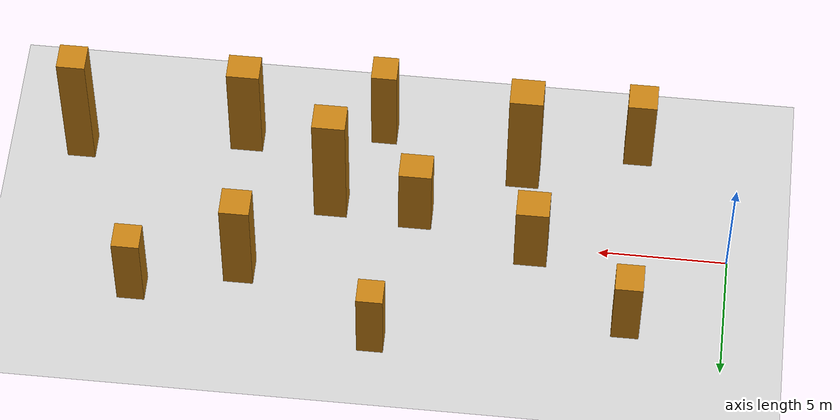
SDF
<sdf version="1.7">
 <world name="default">
  <light name="sun" type="directional">
   <pose>0 0 10 0 -0 0</pose>
   <diffuse>0.8 0.8 0.8 1</diffuse>
   <specular>0.2 0.2 0.2 1</specular>
   <attenuation>
    <range>1000</range>
    <constant>0.9</constant>
    <linear>0.01</linear>
    <quadratic>0.001</quadratic>
   </attenuation>
   <direction>-0.5 0.1 -0.9</direction>
   <spot><inner_angle>0</inner_angle><outer_angle>0</outer_angle><falloff>0</falloff></spot>
  </light>
  <model name="ground_plane">
   <static>1</static>
   <link name="link">
    <collision name="collision">
     <geometry><plane><normal>0 0 1</normal><size>100 100</size></plane></geometry>
     <surface>
      <contact><collide_bitmask>65535</collide_bitmask></contact>
      <friction><ode><mu>100</mu><mu2>50</mu2></ode></friction>
     </surface>
    </collision>
    <visual name="visual">
     <cast_shadows>0</cast_shadows>
     <geometry><plane><normal>0 0 1</normal><size>100 100</size></plane></geometry>
     <material>
      <script><uri>file://media/materials/scripts/gazebo.material</uri><name>Gazebo/Grey</name></script>
     </material>
    </visual>
   </link>
  </model>
  <gravity>0 0 -9.8</gravity>
  <magnetic_field>6e-06 2.3e-05 -4.2e-05</magnetic_field>
  <atmosphere type="adiabatic"/>
  <physics type="ode">
   <max_step_size>0.001</max_step_size>
   <real_time_factor>1</real_time_factor>
   <real_time_update_rate>1000</real_time_update_rate>
  </physics>
  <scene><ambient>0.4 0.4 0.4 1</ambient><background>0.7 0.7 0.7 1</background><shadows>1</shadows></scene>
  <spherical_coordinates>
   <surface_model>EARTH_WGS84</surface_model>
   <latitude_deg>0</latitude_deg>
   <longitude_deg>0</longitude_deg>
   <elevation>0</elevation>
   <heading_deg>0</heading_deg>
  </spherical_coordinates>
  <plugin name="gazebo_octomap" filename="libBuildOctomapPlugin.so"/>
  <model name="model0">
   <link name="link">
    <inertial>
     <mass>1</mass>
     <inertia>
      <ixx>0.166667</ixx>
      <ixy>0</ixy>
      <ixz>0</ixz>
      <iyy>0.166667</iyy>
      <iyz>0</iyz>
      <izz>0.166667</izz>
     </inertia>
    </inertial>
    <visual name="visual">
     <geometry><box><size>1.1537893512140711 1.1325194617878394 4.798290944481906</size></box></geometry>
     <material>
      <script><name>Gazebo/Grey</name><uri>file://media/materials/scripts/gazebo.material</uri></script>
      <shader type="pixel"><normal_map>__default__</normal_map></shader>
      <ambient>0.757 0.49 0.067 1</ambient>
      <diffuse>0.7 0.7 0.7 1</diffuse>
      <specular>0.01 0.01 0.01 1</specular>
      <emissive>0 0 0 1</emissive>
     </material>
    </visual>
    <collision name="collision">
     <geometry><box><size>1.1537893512140711 1.1325194617878394 4.798290944481906</size></box></geometry>
     <surface>
      <friction>
       <ode><mu>1</mu><mu2>1</mu2><fdir1>0 0 0</fdir1><slip1>0</slip1><slip2>0</slip2></ode>
       <torsional>
        <coefficient>1</coefficient>
        <patch_radius>0</patch_radius>
        <surface_radius>0</surface_radius>
        <use_patch_radius>1</use_patch_radius>
        <ode><slip>0</slip></ode>
       </torsional>
      </friction>
      <bounce><restitution_coefficient>0</restitution_coefficient><threshold>1e+06</threshold></bounce>
      <contact>
       <collide_without_contact>0</collide_without_contact>
       <collide_without_contact_bitmask>1</collide_without_contact_bitmask>
       <collide_bitmask>1</collide_bitmask>
       <ode>
        <soft_cfm>0</soft_cfm>
        <soft_erp>0.2</soft_erp>
        <kp>1e+13</kp>
        <kd>1</kd>
        <max_vel>0.01</max_vel>
        <min_depth>0</min_depth>
       </ode>
       <bullet>
        <split_impulse>1</split_impulse>
        <split_impulse_penetration_threshold>-0.01</split_impulse_penetration_threshold>
        <soft_cfm>0</soft_cfm>
        <soft_erp>0.2</soft_erp>
        <kp>1e+13</kp>
        <kd>1</kd>
       </bullet>
      </contact>
     </surface>
    </collision>
   </link>
   <static>0</static>
   <pose>18.875283060163305 2.2214479042763804 2.399145472240953 0.0 0.0 0.0</pose>
  </model>
  <model name="model1">
   <link name="link">
    <inertial>
     <mass>1</mass>
     <inertia>
      <ixx>0.166667</ixx>
      <ixy>0</ixy>
      <ixz>0</ixz>
      <iyy>0.166667</iyy>
      <iyz>0</iyz>
      <izz>0.166667</izz>
     </inertia>
    </inertial>
    <visual name="visual">
     <geometry><box><size>1.0998096535901931 1.0621924213334126 5.970523066807807</size></box></geometry>
     <material>
      <script><name>Gazebo/Grey</name><uri>file://media/materials/scripts/gazebo.material</uri></script>
      <shader type="pixel"><normal_map>__default__</normal_map></shader>
      <ambient>0.757 0.49 0.067 1</ambient>
      <diffuse>0.7 0.7 0.7 1</diffuse>
      <specular>0.01 0.01 0.01 1</specular>
      <emissive>0 0 0 1</emissive>
     </material>
    </visual>
    <collision name="collision">
     <geometry><box><size>1.0998096535901931 1.0621924213334126 5.970523066807807</size></box></geometry>
     <surface>
      <friction>
       <ode><mu>1</mu><mu2>1</mu2><fdir1>0 0 0</fdir1><slip1>0</slip1><slip2>0</slip2></ode>
       <torsional>
        <coefficient>1</coefficient>
        <patch_radius>0</patch_radius>
        <surface_radius>0</surface_radius>
        <use_patch_radius>1</use_patch_radius>
        <ode><slip>0</slip></ode>
       </torsional>
      </friction>
      <bounce><restitution_coefficient>0</restitution_coefficient><threshold>1e+06</threshold></bounce>
      <contact>
       <collide_without_contact>0</collide_without_contact>
       <collide_without_contact_bitmask>1</collide_without_contact_bitmask>
       <collide_bitmask>1</collide_bitmask>
       <ode>
        <soft_cfm>0</soft_cfm>
        <soft_erp>0.2</soft_erp>
        <kp>1e+13</kp>
        <kd>1</kd>
        <max_vel>0.01</max_vel>
        <min_depth>0</min_depth>
       </ode>
       <bullet>
        <split_impulse>1</split_impulse>
        <split_impulse_penetration_threshold>-0.01</split_impulse_penetration_threshold>
        <soft_cfm>0</soft_cfm>
        <soft_erp>0.2</soft_erp>
        <kp>1e+13</kp>
        <kd>1</kd>
       </bullet>
      </contact>
     </surface>
    </collision>
   </link>
   <static>0</static>
   <pose>25.83949608271667 -3.0439455756131393 2.9852615334039037 0.0 0.0 0.0</pose>
  </model>
  <model name="model2">
   <link name="link">
    <inertial>
     <mass>1</mass>
     <inertia>
      <ixx>0.166667</ixx>
      <ixy>0</ixy>
      <ixz>0</ixz>
      <iyy>0.166667</iyy>
      <iyz>0</iyz>
      <izz>0.166667</izz>
     </inertia>
    </inertial>
    <visual name="visual">
     <geometry><box><size>1.2784400936951124 1.1481304131938006 3.5105919065405424</size></box></geometry>
     <material>
      <script><name>Gazebo/Grey</name><uri>file://media/materials/scripts/gazebo.material</uri></script>
      <shader type="pixel"><normal_map>__default__</normal_map></shader>
      <ambient>0.757 0.49 0.067 1</ambient>
      <diffuse>0.7 0.7 0.7 1</diffuse>
      <specular>0.01 0.01 0.01 1</specular>
      <emissive>0 0 0 1</emissive>
     </material>
    </visual>
    <collision name="collision">
     <geometry><box><size>1.2784400936951124 1.1481304131938006 3.5105919065405424</size></box></geometry>
     <surface>
      <friction>
       <ode><mu>1</mu><mu2>1</mu2><fdir1>0 0 0</fdir1><slip1>0</slip1><slip2>0</slip2></ode>
       <torsional>
        <coefficient>1</coefficient>
        <patch_radius>0</patch_radius>
        <surface_radius>0</surface_radius>
        <use_patch_radius>1</use_patch_radius>
        <ode><slip>0</slip></ode>
       </torsional>
      </friction>
      <bounce><restitution_coefficient>0</restitution_coefficient><threshold>1e+06</threshold></bounce>
      <contact>
       <collide_without_contact>0</collide_without_contact>
       <collide_without_contact_bitmask>1</collide_without_contact_bitmask>
       <collide_bitmask>1</collide_bitmask>
       <ode>
        <soft_cfm>0</soft_cfm>
        <soft_erp>0.2</soft_erp>
        <kp>1e+13</kp>
        <kd>1</kd>
        <max_vel>0.01</max_vel>
        <min_depth>0</min_depth>
       </ode>
       <bullet>
        <split_impulse>1</split_impulse>
        <split_impulse_penetration_threshold>-0.01</split_impulse_penetration_threshold>
        <soft_cfm>0</soft_cfm>
        <soft_erp>0.2</soft_erp>
        <kp>1e+13</kp>
        <kd>1</kd>
       </bullet>
      </contact>
     </surface>
    </collision>
   </link>
   <static>0</static>
   <pose>7.638097218285335 0.2972852222518432 1.7552959532702712 0.0 0.0 0.0</pose>
  </model>
  <model name="model3">
   <link name="link">
    <inertial>
     <mass>1</mass>
     <inertia>
      <ixx>0.166667</ixx>
      <ixy>0</ixy>
      <ixz>0</ixz>
      <iyy>0.166667</iyy>
      <iyz>0</iyz>
      <izz>0.166667</izz>
     </inertia>
    </inertial>
    <visual name="visual">
     <geometry><box><size>1.0681400231870435 1.0448718344181165 3.649565419133178</size></box></geometry>
     <material>
      <script><name>Gazebo/Grey</name><uri>file://media/materials/scripts/gazebo.material</uri></script>
      <shader type="pixel"><normal_map>__default__</normal_map></shader>
      <ambient>0.757 0.49 0.067 1</ambient>
      <diffuse>0.7 0.7 0.7 1</diffuse>
      <specular>0.01 0.01 0.01 1</specular>
      <emissive>0 0 0 1</emissive>
     </material>
    </visual>
    <collision name="collision">
     <geometry><box><size>1.0681400231870435 1.0448718344181165 3.649565419133178</size></box></geometry>
     <surface>
      <friction>
       <ode><mu>1</mu><mu2>1</mu2><fdir1>0 0 0</fdir1><slip1>0</slip1><slip2>0</slip2></ode>
       <torsional>
        <coefficient>1</coefficient>
        <patch_radius>0</patch_radius>
        <surface_radius>0</surface_radius>
        <use_patch_radius>1</use_patch_radius>
        <ode><slip>0</slip></ode>
       </torsional>
      </friction>
      <bounce><restitution_coefficient>0</restitution_coefficient><threshold>1e+06</threshold></bounce>
      <contact>
       <collide_without_contact>0</collide_without_contact>
       <collide_without_contact_bitmask>1</collide_without_contact_bitmask>
       <collide_bitmask>1</collide_bitmask>
       <ode>
        <soft_cfm>0</soft_cfm>
        <soft_erp>0.2</soft_erp>
        <kp>1e+13</kp>
        <kd>1</kd>
        <max_vel>0.01</max_vel>
        <min_depth>0</min_depth>
       </ode>
       <bullet>
        <split_impulse>1</split_impulse>
        <split_impulse_penetration_threshold>-0.01</split_impulse_penetration_threshold>
        <soft_cfm>0</soft_cfm>
        <soft_erp>0.2</soft_erp>
        <kp>1e+13</kp>
        <kd>1</kd>
       </bullet>
      </contact>
     </surface>
    </collision>
   </link>
   <static>0</static>
   <pose>22.9381390383581 3.4209865947294897 1.824782709566589 0.0 0.0 0.0</pose>
  </model>
  <model name="model4">
   <link name="link">
    <inertial>
     <mass>1</mass>
     <inertia>
      <ixx>0.166667</ixx>
      <ixy>0</ixy>
      <ixz>0</ixz>
      <iyy>0.166667</iyy>
      <iyz>0</iyz>
      <izz>0.166667</izz>
     </inertia>
    </inertial>
    <visual name="visual">
     <geometry><box><size>1.2826877839673028 1.092467298000049 5.986520660812948</size></box></geometry>
     <material>
      <script><name>Gazebo/Grey</name><uri>file://media/materials/scripts/gazebo.material</uri></script>
      <shader type="pixel"><normal_map>__default__</normal_map></shader>
      <ambient>0.757 0.49 0.067 1</ambient>
      <diffuse>0.7 0.7 0.7 1</diffuse>
      <specular>0.01 0.01 0.01 1</specular>
      <emissive>0 0 0 1</emissive>
     </material>
    </visual>
    <collision name="collision">
     <geometry><box><size>1.2826877839673028 1.092467298000049 5.986520660812948</size></box></geometry>
     <surface>
      <friction>
       <ode><mu>1</mu><mu2>1</mu2><fdir1>0 0 0</fdir1><slip1>0</slip1><slip2>0</slip2></ode>
       <torsional>
        <coefficient>1</coefficient>
        <patch_radius>0</patch_radius>
        <surface_radius>0</surface_radius>
        <use_patch_radius>1</use_patch_radius>
        <ode><slip>0</slip></ode>
       </torsional>
      </friction>
      <bounce><restitution_coefficient>0</restitution_coefficient><threshold>1e+06</threshold></bounce>
      <contact>
       <collide_without_contact>0</collide_without_contact>
       <collide_without_contact_bitmask>1</collide_without_contact_bitmask>
       <collide_bitmask>1</collide_bitmask>
       <ode>
        <soft_cfm>0</soft_cfm>
        <soft_erp>0.2</soft_erp>
        <kp>1e+13</kp>
        <kd>1</kd>
        <max_vel>0.01</max_vel>
        <min_depth>0</min_depth>
       </ode>
       <bullet>
        <split_impulse>1</split_impulse>
        <split_impulse_penetration_threshold>-0.01</split_impulse_penetration_threshold>
        <soft_cfm>0</soft_cfm>
        <soft_erp>0.2</soft_erp>
        <kp>1e+13</kp>
        <kd>1</kd>
       </bullet>
      </contact>
     </surface>
    </collision>
   </link>
   <static>0</static>
   <pose>15.644370814682675 -1.201486112978368 2.993260330406474 0.0 0.0 0.0</pose>
  </model>
  <model name="model5">
   <link name="link">
    <inertial>
     <mass>1</mass>
     <inertia>
      <ixx>0.166667</ixx>
      <ixy>0</ixy>
      <ixz>0</ixz>
      <iyy>0.166667</iyy>
      <iyz>0</iyz>
      <izz>0.166667</izz>
     </inertia>
    </inertial>
    <visual name="visual">
     <geometry><box><size>1.2831627571876547 1.0731507330802545 3.5652252982230435</size></box></geometry>
     <material>
      <script><name>Gazebo/Grey</name><uri>file://media/materials/scripts/gazebo.material</uri></script>
      <shader type="pixel"><normal_map>__default__</normal_map></shader>
      <ambient>0.757 0.49 0.067 1</ambient>
      <diffuse>0.7 0.7 0.7 1</diffuse>
      <specular>0.01 0.01 0.01 1</specular>
      <emissive>0 0 0 1</emissive>
     </material>
    </visual>
    <collision name="collision">
     <geometry><box><size>1.2831627571876547 1.0731507330802545 3.5652252982230435</size></box></geometry>
     <surface>
      <friction>
       <ode><mu>1</mu><mu2>1</mu2><fdir1>0 0 0</fdir1><slip1>0</slip1><slip2>0</slip2></ode>
       <torsional>
        <coefficient>1</coefficient>
        <patch_radius>0</patch_radius>
        <surface_radius>0</surface_radius>
        <use_patch_radius>1</use_patch_radius>
        <ode><slip>0</slip></ode>
       </torsional>
      </friction>
      <bounce><restitution_coefficient>0</restitution_coefficient><threshold>1e+06</threshold></bounce>
      <contact>
       <collide_without_contact>0</collide_without_contact>
       <collide_without_contact_bitmask>1</collide_without_contact_bitmask>
       <collide_bitmask>1</collide_bitmask>
       <ode>
        <soft_cfm>0</soft_cfm>
        <soft_erp>0.2</soft_erp>
        <kp>1e+13</kp>
        <kd>1</kd>
        <max_vel>0.01</max_vel>
        <min_depth>0</min_depth>
       </ode>
       <bullet>
        <split_impulse>1</split_impulse>
        <split_impulse_penetration_threshold>-0.01</split_impulse_penetration_threshold>
        <soft_cfm>0</soft_cfm>
        <soft_erp>0.2</soft_erp>
        <kp>1e+13</kp>
        <kd>1</kd>
       </bullet>
      </contact>
     </surface>
    </collision>
   </link>
   <static>0</static>
   <pose>12.28272223976419 -0.9490127584450461 1.7826126491115217 0.0 0.0 0.0</pose>
  </model>
  <model name="model6">
   <link name="link">
    <inertial>
     <mass>1</mass>
     <inertia>
      <ixx>0.166667</ixx>
      <ixy>0</ixy>
      <ixz>0</ixz>
      <iyy>0.166667</iyy>
      <iyz>0</iyz>
      <izz>0.166667</izz>
     </inertia>
    </inertial>
    <visual name="visual">
     <geometry><box><size>1.1266723911541678 1.110444511172262 3.8930669979527335</size></box></geometry>
     <material>
      <script><name>Gazebo/Grey</name><uri>file://media/materials/scripts/gazebo.material</uri></script>
      <shader type="pixel"><normal_map>__default__</normal_map></shader>
      <ambient>0.757 0.49 0.067 1</ambient>
      <diffuse>0.7 0.7 0.7 1</diffuse>
      <specular>0.01 0.01 0.01 1</specular>
      <emissive>0 0 0 1</emissive>
     </material>
    </visual>
    <collision name="collision">
     <geometry><box><size>1.1266723911541678 1.110444511172262 3.8930669979527335</size></box></geometry>
     <surface>
      <friction>
       <ode><mu>1</mu><mu2>1</mu2><fdir1>0 0 0</fdir1><slip1>0</slip1><slip2>0</slip2></ode>
       <torsional>
        <coefficient>1</coefficient>
        <patch_radius>0</patch_radius>
        <surface_radius>0</surface_radius>
        <use_patch_radius>1</use_patch_radius>
        <ode><slip>0</slip></ode>
       </torsional>
      </friction>
      <bounce><restitution_coefficient>0</restitution_coefficient><threshold>1e+06</threshold></bounce>
      <contact>
       <collide_without_contact>0</collide_without_contact>
       <collide_without_contact_bitmask>1</collide_without_contact_bitmask>
       <collide_bitmask>1</collide_bitmask>
       <ode>
        <soft_cfm>0</soft_cfm>
        <soft_erp>0.2</soft_erp>
        <kp>1e+13</kp>
        <kd>1</kd>
        <max_vel>0.01</max_vel>
        <min_depth>0</min_depth>
       </ode>
       <bullet>
        <split_impulse>1</split_impulse>
        <split_impulse_penetration_threshold>-0.01</split_impulse_penetration_threshold>
        <soft_cfm>0</soft_cfm>
        <soft_erp>0.2</soft_erp>
        <kp>1e+13</kp>
        <kd>1</kd>
       </bullet>
      </contact>
     </surface>
    </collision>
   </link>
   <static>0</static>
   <pose>3.7520030473817494 -4.869319424033493 1.9465334989763667 0.0 0.0 0.0</pose>
  </model>
  <model name="model7">
   <link name="link">
    <inertial>
     <mass>1</mass>
     <inertia>
      <ixx>0.166667</ixx>
      <ixy>0</ixy>
      <ixz>0</ixz>
      <iyy>0.166667</iyy>
      <iyz>0</iyz>
      <izz>0.166667</izz>
     </inertia>
    </inertial>
    <visual name="visual">
     <geometry><box><size>1.0234933442040415 1.009764274124281 3.5419059879639536</size></box></geometry>
     <material>
      <script><name>Gazebo/Grey</name><uri>file://media/materials/scripts/gazebo.material</uri></script>
      <shader type="pixel"><normal_map>__default__</normal_map></shader>
      <ambient>0.757 0.49 0.067 1</ambient>
      <diffuse>0.7 0.7 0.7 1</diffuse>
      <specular>0.01 0.01 0.01 1</specular>
      <emissive>0 0 0 1</emissive>
     </material>
    </visual>
    <collision name="collision">
     <geometry><box><size>1.0234933442040415 1.009764274124281 3.5419059879639536</size></box></geometry>
     <surface>
      <friction>
       <ode><mu>1</mu><mu2>1</mu2><fdir1>0 0 0</fdir1><slip1>0</slip1><slip2>0</slip2></ode>
       <torsional>
        <coefficient>1</coefficient>
        <patch_radius>0</patch_radius>
        <surface_radius>0</surface_radius>
        <use_patch_radius>1</use_patch_radius>
        <ode><slip>0</slip></ode>
       </torsional>
      </friction>
      <bounce><restitution_coefficient>0</restitution_coefficient><threshold>1e+06</threshold></bounce>
      <contact>
       <collide_without_contact>0</collide_without_contact>
       <collide_without_contact_bitmask>1</collide_without_contact_bitmask>
       <collide_bitmask>1</collide_bitmask>
       <ode>
        <soft_cfm>0</soft_cfm>
        <soft_erp>0.2</soft_erp>
        <kp>1e+13</kp>
        <kd>1</kd>
        <max_vel>0.01</max_vel>
        <min_depth>0</min_depth>
       </ode>
       <bullet>
        <split_impulse>1</split_impulse>
        <split_impulse_penetration_threshold>-0.01</split_impulse_penetration_threshold>
        <soft_cfm>0</soft_cfm>
        <soft_erp>0.2</soft_erp>
        <kp>1e+13</kp>
        <kd>1</kd>
       </bullet>
      </contact>
     </surface>
    </collision>
   </link>
   <static>0</static>
   <pose>13.45573213401618 4.898434696840093 1.7709529939819768 0.0 0.0 0.0</pose>
  </model>
  <model name="model8">
   <link name="link">
    <inertial>
     <mass>1</mass>
     <inertia>
      <ixx>0.166667</ixx>
      <ixy>0</ixy>
      <ixz>0</ixz>
      <iyy>0.166667</iyy>
      <iyz>0</iyz>
      <izz>0.166667</izz>
     </inertia>
    </inertial>
    <visual name="visual">
     <geometry><box><size>1.0813020498826171 1.1621367240943667 3.4194886743667863</size></box></geometry>
     <material>
      <script><name>Gazebo/Grey</name><uri>file://media/materials/scripts/gazebo.material</uri></script>
      <shader type="pixel"><normal_map>__default__</normal_map></shader>
      <ambient>0.757 0.49 0.067 1</ambient>
      <diffuse>0.7 0.7 0.7 1</diffuse>
      <specular>0.01 0.01 0.01 1</specular>
      <emissive>0 0 0 1</emissive>
     </material>
    </visual>
    <collision name="collision">
     <geometry><box><size>1.0813020498826171 1.1621367240943667 3.4194886743667863</size></box></geometry>
     <surface>
      <friction>
       <ode><mu>1</mu><mu2>1</mu2><fdir1>0 0 0</fdir1><slip1>0</slip1><slip2>0</slip2></ode>
       <torsional>
        <coefficient>1</coefficient>
        <patch_radius>0</patch_radius>
        <surface_radius>0</surface_radius>
        <use_patch_radius>1</use_patch_radius>
        <ode><slip>0</slip></ode>
       </torsional>
      </friction>
      <bounce><restitution_coefficient>0</restitution_coefficient><threshold>1e+06</threshold></bounce>
      <contact>
       <collide_without_contact>0</collide_without_contact>
       <collide_without_contact_bitmask>1</collide_without_contact_bitmask>
       <collide_bitmask>1</collide_bitmask>
       <ode>
        <soft_cfm>0</soft_cfm>
        <soft_erp>0.2</soft_erp>
        <kp>1e+13</kp>
        <kd>1</kd>
        <max_vel>0.01</max_vel>
        <min_depth>0</min_depth>
       </ode>
       <bullet>
        <split_impulse>1</split_impulse>
        <split_impulse_penetration_threshold>-0.01</split_impulse_penetration_threshold>
        <soft_cfm>0</soft_cfm>
        <soft_erp>0.2</soft_erp>
        <kp>1e+13</kp>
        <kd>1</kd>
       </bullet>
      </contact>
     </surface>
    </collision>
   </link>
   <static>0</static>
   <pose>3.745969454793695 3.2246562453568686 1.7097443371833931 0.0 0.0 0.0</pose>
  </model>
  <model name="model9">
   <link name="link">
    <inertial>
     <mass>1</mass>
     <inertia>
      <ixx>0.166667</ixx>
      <ixy>0</ixy>
      <ixz>0</ixz>
      <iyy>0.166667</iyy>
      <iyz>0</iyz>
      <izz>0.166667</izz>
     </inertia>
    </inertial>
    <visual name="visual">
     <geometry><box><size>1.2964679847543483 1.1628043815498725 5.676467968179588</size></box></geometry>
     <material>
      <script><name>Gazebo/Grey</name><uri>file://media/materials/scripts/gazebo.material</uri></script>
      <shader type="pixel"><normal_map>__default__</normal_map></shader>
      <ambient>0.757 0.49 0.067 1</ambient>
      <diffuse>0.7 0.7 0.7 1</diffuse>
      <specular>0.01 0.01 0.01 1</specular>
      <emissive>0 0 0 1</emissive>
     </material>
    </visual>
    <collision name="collision">
     <geometry><box><size>1.2964679847543483 1.1628043815498725 5.676467968179588</size></box></geometry>
     <surface>
      <friction>
       <ode><mu>1</mu><mu2>1</mu2><fdir1>0 0 0</fdir1><slip1>0</slip1><slip2>0</slip2></ode>
       <torsional>
        <coefficient>1</coefficient>
        <patch_radius>0</patch_radius>
        <surface_radius>0</surface_radius>
        <use_patch_radius>1</use_patch_radius>
        <ode><slip>0</slip></ode>
       </torsional>
      </friction>
      <bounce><restitution_coefficient>0</restitution_coefficient><threshold>1e+06</threshold></bounce>
      <contact>
       <collide_without_contact>0</collide_without_contact>
       <collide_without_contact_bitmask>1</collide_without_contact_bitmask>
       <collide_bitmask>1</collide_bitmask>
       <ode>
        <soft_cfm>0</soft_cfm>
        <soft_erp>0.2</soft_erp>
        <kp>1e+13</kp>
        <kd>1</kd>
        <max_vel>0.01</max_vel>
        <min_depth>0</min_depth>
       </ode>
       <bullet>
        <split_impulse>1</split_impulse>
        <split_impulse_penetration_threshold>-0.01</split_impulse_penetration_threshold>
        <soft_cfm>0</soft_cfm>
        <soft_erp>0.2</soft_erp>
        <kp>1e+13</kp>
        <kd>1</kd>
       </bullet>
      </contact>
     </surface>
    </collision>
   </link>
   <static>0</static>
   <pose>8.235164850464756 -3.3600308911304477 2.838233984089794 0.0 0.0 0.0</pose>
  </model>
  <model name="model10">
   <link name="link">
    <inertial>
     <mass>1</mass>
     <inertia>
      <ixx>0.166667</ixx>
      <ixy>0</ixy>
      <ixz>0</ixz>
      <iyy>0.166667</iyy>
      <iyz>0</iyz>
      <izz>0.166667</izz>
     </inertia>
    </inertial>
    <visual name="visual">
     <geometry><box><size>1.0045055572032067 1.0407971433788088 4.392310760879408</size></box></geometry>
     <material>
      <script><name>Gazebo/Grey</name><uri>file://media/materials/scripts/gazebo.material</uri></script>
      <shader type="pixel"><normal_map>__default__</normal_map></shader>
      <ambient>0.757 0.49 0.067 1</ambient>
      <diffuse>0.7 0.7 0.7 1</diffuse>
      <specular>0.01 0.01 0.01 1</specular>
      <emissive>0 0 0 1</emissive>
     </material>
    </visual>
    <collision name="collision">
     <geometry><box><size>1.0045055572032067 1.0407971433788088 4.392310760879408</size></box></geometry>
     <surface>
      <friction>
       <ode><mu>1</mu><mu2>1</mu2><fdir1>0 0 0</fdir1><slip1>0</slip1><slip2>0</slip2></ode>
       <torsional>
        <coefficient>1</coefficient>
        <patch_radius>0</patch_radius>
        <surface_radius>0</surface_radius>
        <use_patch_radius>1</use_patch_radius>
        <ode><slip>0</slip></ode>
       </torsional>
      </friction>
      <bounce><restitution_coefficient>0</restitution_coefficient><threshold>1e+06</threshold></bounce>
      <contact>
       <collide_without_contact>0</collide_without_contact>
       <collide_without_contact_bitmask>1</collide_without_contact_bitmask>
       <collide_bitmask>1</collide_bitmask>
       <ode>
        <soft_cfm>0</soft_cfm>
        <soft_erp>0.2</soft_erp>
        <kp>1e+13</kp>
        <kd>1</kd>
        <max_vel>0.01</max_vel>
        <min_depth>0</min_depth>
       </ode>
       <bullet>
        <split_impulse>1</split_impulse>
        <split_impulse_penetration_threshold>-0.01</split_impulse_penetration_threshold>
        <soft_cfm>0</soft_cfm>
        <soft_erp>0.2</soft_erp>
        <kp>1e+13</kp>
        <kd>1</kd>
       </bullet>
      </contact>
     </surface>
    </collision>
   </link>
   <static>0</static>
   <pose>13.894041656859642 -4.86505387729082 2.196155380439704 0.0 0.0 0.0</pose>
  </model>
  <model name="model11">
   <link name="link">
    <inertial>
     <mass>1</mass>
     <inertia>
      <ixx>0.166667</ixx>
      <ixy>0</ixy>
      <ixz>0</ixz>
      <iyy>0.166667</iyy>
      <iyz>0</iyz>
      <izz>0.166667</izz>
     </inertia>
    </inertial>
    <visual name="visual">
     <geometry><box><size>1.2808020717889501 1.0435653003002123 4.9306888947227305</size></box></geometry>
     <material>
      <script><name>Gazebo/Grey</name><uri>file://media/materials/scripts/gazebo.material</uri></script>
      <shader type="pixel"><normal_map>__default__</normal_map></shader>
      <ambient>0.757 0.49 0.067 1</ambient>
      <diffuse>0.7 0.7 0.7 1</diffuse>
      <specular>0.01 0.01 0.01 1</specular>
      <emissive>0 0 0 1</emissive>
     </material>
    </visual>
    <collision name="collision">
     <geometry><box><size>1.2808020717889501 1.0435653003002123 4.9306888947227305</size></box></geometry>
     <surface>
      <friction>
       <ode><mu>1</mu><mu2>1</mu2><fdir1>0 0 0</fdir1><slip1>0</slip1><slip2>0</slip2></ode>
       <torsional>
        <coefficient>1</coefficient>
        <patch_radius>0</patch_radius>
        <surface_radius>0</surface_radius>
        <use_patch_radius>1</use_patch_radius>
        <ode><slip>0</slip></ode>
       </torsional>
      </friction>
      <bounce><restitution_coefficient>0</restitution_coefficient><threshold>1e+06</threshold></bounce>
      <contact>
       <collide_without_contact>0</collide_without_contact>
       <collide_without_contact_bitmask>1</collide_without_contact_bitmask>
       <collide_bitmask>1</collide_bitmask>
       <ode>
        <soft_cfm>0</soft_cfm>
        <soft_erp>0.2</soft_erp>
        <kp>1e+13</kp>
        <kd>1</kd>
        <max_vel>0.01</max_vel>
        <min_depth>0</min_depth>
       </ode>
       <bullet>
        <split_impulse>1</split_impulse>
        <split_impulse_penetration_threshold>-0.01</split_impulse_penetration_threshold>
        <soft_cfm>0</soft_cfm>
        <soft_erp>0.2</soft_erp>
        <kp>1e+13</kp>
        <kd>1</kd>
       </bullet>
      </contact>
     </surface>
    </collision>
   </link>
   <static>0</static>
   <pose>19.319266492550756 -3.9835209724568674 2.4653444473613653 0.0 0.0 0.0</pose>
  </model>
 </world>
</sdf>
